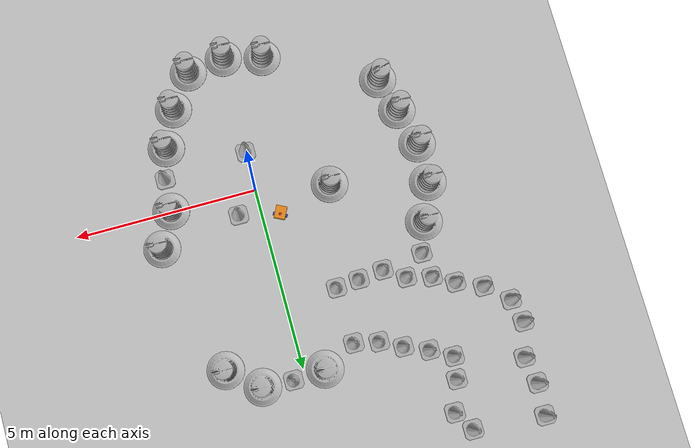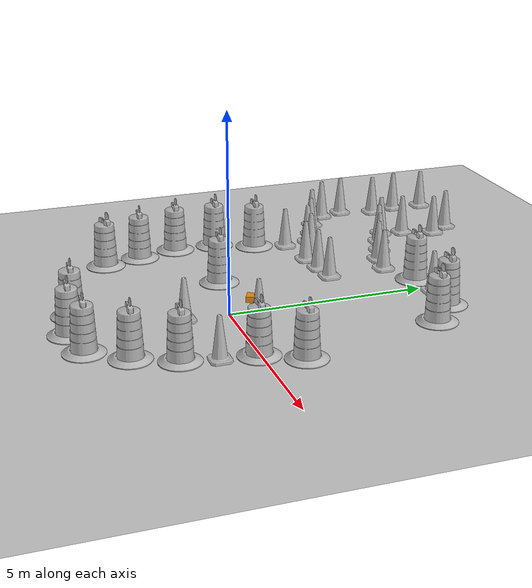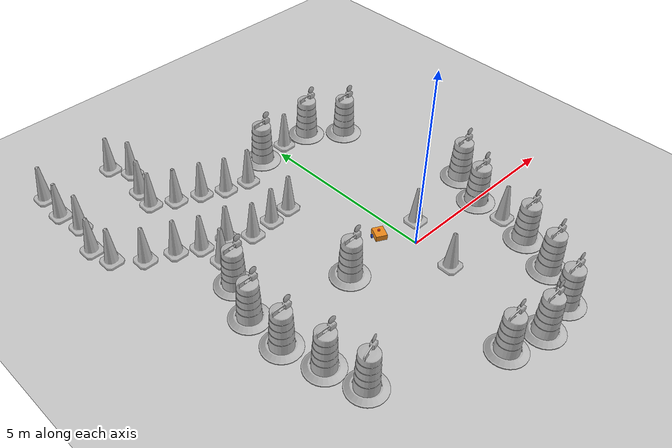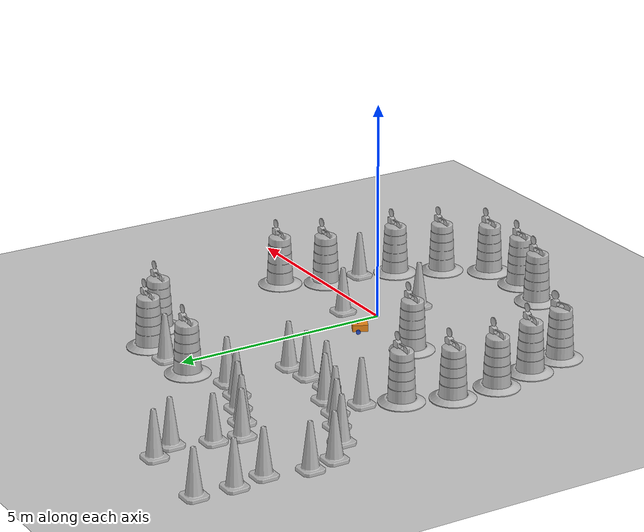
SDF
<sdf version="1.7">
 <world name="default">
  <light name="sun" type="directional">
   <pose>0 0 10 0 -0 0</pose>
   <diffuse>0.8 0.8 0.8 1</diffuse>
   <specular>0.2 0.2 0.2 1</specular>
   <attenuation>
    <range>1000</range>
    <constant>0.9</constant>
    <linear>0.01</linear>
    <quadratic>0.001</quadratic>
   </attenuation>
   <direction>-0.5 0.1 -0.9</direction>
   <spot><inner_angle>0</inner_angle><outer_angle>0</outer_angle><falloff>0</falloff></spot>
  </light>
  <model name="ground_plane">
   <static>1</static>
   <link name="link">
    <collision name="collision">
     <geometry><plane><normal>0 0 1</normal><size>100 100</size></plane></geometry>
     <surface><friction><ode><mu>100</mu><mu2>50</mu2></ode></friction></surface>
    </collision>
    <visual name="visual">
     <cast_shadows>0</cast_shadows>
     <geometry><plane><normal>0 0 1</normal><size>100 100</size></plane></geometry>
     <material>
      <script><uri>file://media/materials/scripts/gazebo.material</uri><name>Gazebo/Grey</name></script>
     </material>
    </visual>
   </link>
  </model>
  <gravity>0 0 -9.8</gravity>
  <magnetic_field>6e-06 2.3e-05 -4.2e-05</magnetic_field>
  <atmosphere type="adiabatic"/>
  <physics type="ode">
   <max_step_size>0.001</max_step_size>
   <real_time_factor>1</real_time_factor>
   <real_time_update_rate>1000</real_time_update_rate>
  </physics>
  <scene><ambient>0.4 0.4 0.4 1</ambient><background>0.7 0.7 0.7 1</background><shadows>1</shadows></scene>
  <audio><device>default</device></audio>
  <spherical_coordinates>
   <surface_model>EARTH_WGS84</surface_model>
   <latitude_deg>0</latitude_deg>
   <longitude_deg>0</longitude_deg>
   <elevation>0</elevation>
   <heading_deg>0</heading_deg>
  </spherical_coordinates>
  <model name="my_bot">
   <link name="base_link">
    <inertial>
     <pose>0.095455 0 -0.009091 0 -0 0</pose>
     <mass>1.1</mass>
     <inertia>
      <ixx>0.0114472</ixx>
      <ixy>0</ixy>
      <ixz>0.000295455</ixz>
      <iyy>0.0168287</iyy>
      <iyz>0</iyz>
      <izz>0.0134427</izz>
     </inertia>
    </inertial>
    <collision name="base_link_fixed_joint_lump__chassis_collision">
     <pose>0.05 0 0.075 0 -0 0</pose>
     <geometry><box><size>0.35 0.3 0.15</size></box></geometry>
    </collision>
    <collision name="base_link_fixed_joint_lump__caster_wheel_collision_1">
     <pose>0.16 0 0 1.5708 -0 0</pose>
     <geometry><sphere><radius>0.05</radius></sphere></geometry>
     <surface><friction><ode><mu>0.1</mu><mu2>0.1</mu2></ode></friction></surface>
    </collision>
    <collision name="base_link_fixed_joint_lump__laser_frame_collision_2">
     <pose>0 0 0.15 0 -0 0</pose>
     <geometry><cylinder><length>0.03</length><radius>0.035</radius></cylinder></geometry>
    </collision>
    <visual name="base_link_fixed_joint_lump__chassis_visual">
     <pose>0.05 0 0.075 0 -0 0</pose>
     <geometry><box><size>0.35 0.3 0.15</size></box></geometry>
     <material>
      <script><name>Gazebo/Orange</name><uri>file://media/materials/scripts/gazebo.material</uri></script>
     </material>
    </visual>
    <visual name="base_link_fixed_joint_lump__caster_wheel_visual_1">
     <pose>0.16 0 0 1.5708 -0 0</pose>
     <geometry><sphere><radius>0.05</radius></sphere></geometry>
     <material>
      <script><name>Gazebo/white</name><uri>file://media/materials/scripts/gazebo.material</uri></script>
     </material>
    </visual>
    <visual name="base_link_fixed_joint_lump__laser_frame_visual_2">
     <pose>0 0 0.15 0 -0 0</pose>
     <geometry><cylinder><length>0.03</length><radius>0.035</radius></cylinder></geometry>
     <material>
      <script><name>Gazebo/red</name><uri>file://media/materials/scripts/gazebo.material</uri></script>
     </material>
    </visual>
    <sensor name="laser" type="ray">
     <visualize>1</visualize>
     <update_rate>10</update_rate>
     <ray>
      <scan>
       <horizontal>
        <samples>360</samples>
        <min_angle>-3.14</min_angle>
        <max_angle>3.14</max_angle>
        <resolution>1</resolution>
       </horizontal>
       <vertical><samples>1</samples><min_angle>0</min_angle><max_angle>0</max_angle></vertical>
      </scan>
      <range><min>0.3</min><max>12</max></range>
     </ray>
     <plugin name="laser_controller" filename="libgazebo_ros_ray_sensor.so">
      <ros><argument>~/out:=scan</argument></ros>
      <output_type>sensor_msgs/LaserScan</output_type>
      <frame_name>laser_frame</frame_name>
     </plugin>
     <pose>0 0 0.15 0 -0 0</pose>
    </sensor>
   </link>
   <joint name="left_wheel_joint" type="revolute">
    <pose relative_to="base_link">0 0.175 0 -1.5708 0 0</pose>
    <parent>base_link</parent>
    <child>left_wheel</child>
    <axis>
     <xyz>0 0 1</xyz>
     <limit><lower>-1e+16</lower><upper>1e+16</upper></limit>
     <dynamics>
      <damping>1</damping>
      <friction>0.5</friction>
      <spring_reference>0</spring_reference>
      <spring_stiffness>0</spring_stiffness>
     </dynamics>
    </axis>
   </joint>
   <link name="left_wheel">
    <pose relative_to="left_wheel_joint">0 0 0 0 -0 0</pose>
    <inertial>
     <mass>0.5</mass>
     <inertia>
      <ixx>0.000379167</ixx>
      <ixy>0</ixy>
      <ixz>0</ixz>
      <iyy>0.000379167</iyy>
      <iyz>0</iyz>
      <izz>0.000625</izz>
     </inertia>
    </inertial>
    <collision name="left_wheel_collision">
     <geometry><cylinder><length>0.04</length><radius>0.05</radius></cylinder></geometry>
     <surface><friction><ode><mu>1.5</mu><mu2>1.5</mu2></ode></friction></surface>
    </collision>
    <visual name="left_wheel_visual">
     <geometry><cylinder><length>0.04</length><radius>0.05</radius></cylinder></geometry>
     <material>
      <script><name>Gazebo/Blue</name><uri>file://media/materials/scripts/gazebo.material</uri></script>
     </material>
    </visual>
   </link>
   <joint name="right_wheel_joint" type="revolute">
    <pose relative_to="base_link">0 -0.175 0 1.5708 -0 0</pose>
    <parent>base_link</parent>
    <child>right_wheel</child>
    <axis>
     <xyz>0 0 -1</xyz>
     <limit><lower>-1e+16</lower><upper>1e+16</upper></limit>
     <dynamics>
      <damping>1</damping>
      <friction>0.5</friction>
      <spring_reference>0</spring_reference>
      <spring_stiffness>0</spring_stiffness>
     </dynamics>
    </axis>
   </joint>
   <link name="right_wheel">
    <pose relative_to="right_wheel_joint">0 0 0 0 -0 0</pose>
    <inertial>
     <mass>0.5</mass>
     <inertia>
      <ixx>0.000379167</ixx>
      <ixy>0</ixy>
      <ixz>0</ixz>
      <iyy>0.000379167</iyy>
      <iyz>0</iyz>
      <izz>0.000625</izz>
     </inertia>
    </inertial>
    <collision name="right_wheel_collision">
     <geometry><cylinder><length>0.04</length><radius>0.05</radius></cylinder></geometry>
     <surface><friction><ode><mu>1.5</mu><mu2>1.5</mu2></ode></friction></surface>
    </collision>
    <visual name="right_wheel_visual">
     <geometry><cylinder><length>0.04</length><radius>0.05</radius></cylinder></geometry>
     <material>
      <script><name>Gazebo/Blue</name><uri>file://media/materials/scripts/gazebo.material</uri></script>
     </material>
    </visual>
   </link>
   <static>0</static>
   <plugin name="diff_drive" filename="libgazebo_ros_diff_drive.so">
    <left_joint>left_wheel_joint</left_joint>
    <right_joint>right_wheel_joint</right_joint>
    <wheel_separation>0.297</wheel_separation>
    <wheel_diameter>0.066</wheel_diameter>
    <max_wheel_torque>200</max_wheel_torque>
    <max_wheel_acceleration>10.0</max_wheel_acceleration>
    <odometry_frame>odom</odometry_frame>
    <robot_base_frame>base_link</robot_base_frame>
    <publish_odom>1</publish_odom>
    <publish_odom_tf>1</publish_odom_tf>
    <publish_wheel_tf>1</publish_wheel_tf>
   </plugin>
   <pose>-0.487358 0.828769 0.05 -0 1e-06 -2.03492</pose>
  </model>
  <model name="Construction Barrel">
   <link name="link">
    <inertial>
     <pose>0 0 0.4 0 -0 0</pose>
     <mass>500</mass>
     <inertia><ixx>51.2096</ixx><iyy>51.2096</iyy><izz>25</izz><ixy>0</ixy><ixz>0</ixz><iyz>0</iyz></inertia>
    </inertial>
    <collision name="collision">
     <geometry><mesh><uri>model://construction_barrel/meshes/construction_barrel.dae</uri></mesh></geometry>
    </collision>
    <visual name="visual">
     <geometry><mesh><uri>model://construction_barrel/meshes/construction_barrel.dae</uri></mesh></geometry>
    </visual>
   </link>
   <pose>-4.07025 -2.12361 -1e-06 0 4e-06 0.274691</pose>
  </model>
  <model name="Construction Barrel_0">
   <link name="link">
    <inertial>
     <pose>0 0 0.4 0 -0 0</pose>
     <mass>500</mass>
     <inertia><ixx>51.2096</ixx><iyy>51.2096</iyy><izz>25</izz><ixy>0</ixy><ixz>0</ixz><iyz>0</iyz></inertia>
    </inertial>
    <collision name="collision">
     <geometry><mesh><uri>model://construction_barrel/meshes/construction_barrel.dae</uri></mesh></geometry>
    </collision>
    <visual name="visual">
     <geometry><mesh><uri>model://construction_barrel/meshes/construction_barrel.dae</uri></mesh></geometry>
    </visual>
   </link>
   <pose>-4.34497 -1.14487 -2e-06 7e-06 -4e-06 -0.055319</pose>
  </model>
  <model name="Construction Barrel_1">
   <link name="link">
    <inertial>
     <pose>0 0 0.4 0 -0 0</pose>
     <mass>500</mass>
     <inertia><ixx>51.2096</ixx><iyy>51.2096</iyy><izz>25</izz><ixy>0</ixy><ixz>0</ixz><iyz>0</iyz></inertia>
    </inertial>
    <collision name="collision">
     <geometry><mesh><uri>model://construction_barrel/meshes/construction_barrel.dae</uri></mesh></geometry>
    </collision>
    <visual name="visual">
     <geometry><mesh><uri>model://construction_barrel/meshes/construction_barrel.dae</uri></mesh></geometry>
    </visual>
   </link>
   <pose>-4.62088 -0.092494 1e-06 3e-06 2e-06 -5.2e-05</pose>
  </model>
  <model name="Construction Barrel_2">
   <link name="link">
    <inertial>
     <pose>0 0 0.4 0 -0 0</pose>
     <mass>500</mass>
     <inertia><ixx>51.2096</ixx><iyy>51.2096</iyy><izz>25</izz><ixy>0</ixy><ixz>0</ixz><iyz>0</iyz></inertia>
    </inertial>
    <collision name="collision">
     <geometry><mesh><uri>model://construction_barrel/meshes/construction_barrel.dae</uri></mesh></geometry>
    </collision>
    <visual name="visual">
     <geometry><mesh><uri>model://construction_barrel/meshes/construction_barrel.dae</uri></mesh></geometry>
    </visual>
   </link>
   <pose>-4.60645 1.01089 1e-06 3e-06 2e-06 -5.1e-05</pose>
  </model>
  <model name="Construction Cone">
   <link name="link">
    <collision name="collision">
     <geometry>
      <mesh><scale>10 10 10</scale><uri>model://construction_cone/meshes/construction_cone.dae</uri></mesh>
     </geometry>
    </collision>
    <visual name="visual">
     <geometry>
      <mesh><scale>10 10 10</scale><uri>model://construction_cone/meshes/construction_cone.dae</uri></mesh>
     </geometry>
    </visual>
    <inertial>
     <inertia><ixx>1</ixx><ixy>0</ixy><ixz>0</ixz><iyy>1</iyy><iyz>0</iyz><izz>1</izz></inertia>
     <mass>1</mass>
    </inertial>
   </link>
   <pose>-2.77141 3.00239 -0 0 -1e-06 0</pose>
  </model>
  <model name="Construction Cone_0">
   <link name="link">
    <collision name="collision">
     <geometry>
      <mesh><scale>10 10 10</scale><uri>model://construction_cone/meshes/construction_cone.dae</uri></mesh>
     </geometry>
    </collision>
    <visual name="visual">
     <geometry>
      <mesh><scale>10 10 10</scale><uri>model://construction_cone/meshes/construction_cone.dae</uri></mesh>
     </geometry>
    </visual>
    <inertial>
     <inertia><ixx>1</ixx><ixy>0</ixy><ixz>0</ixz><iyy>1</iyy><iyz>0</iyz><izz>1</izz></inertia>
     <mass>1</mass>
    </inertial>
   </link>
   <pose>-2.07721 3.08173 -0 0 -0 0</pose>
  </model>
  <model name="Construction Cone_1">
   <link name="link">
    <collision name="collision">
     <geometry>
      <mesh><scale>10 10 10</scale><uri>model://construction_cone/meshes/construction_cone.dae</uri></mesh>
     </geometry>
    </collision>
    <visual name="visual">
     <geometry>
      <mesh><scale>10 10 10</scale><uri>model://construction_cone/meshes/construction_cone.dae</uri></mesh>
     </geometry>
    </visual>
    <inertial>
     <inertia><ixx>1</ixx><ixy>0</ixy><ixz>0</ixz><iyy>1</iyy><iyz>0</iyz><izz>1</izz></inertia>
     <mass>1</mass>
    </inertial>
   </link>
   <pose>-1.43292 3.1461 0 -0 -0 -0</pose>
  </model>
  <model name="Construction Barrel_3">
   <link name="link">
    <inertial>
     <pose>0 0 0.4 0 -0 0</pose>
     <mass>500</mass>
     <inertia><ixx>51.2096</ixx><iyy>51.2096</iyy><izz>25</izz><ixy>0</ixy><ixz>0</ixz><iyz>0</iyz></inertia>
    </inertial>
    <collision name="collision">
     <geometry><mesh><uri>model://construction_barrel/meshes/construction_barrel.dae</uri></mesh></geometry>
    </collision>
    <visual name="visual">
     <geometry><mesh><uri>model://construction_barrel/meshes/construction_barrel.dae</uri></mesh></geometry>
    </visual>
   </link>
   <pose>-2.00508 0.361544 1e-06 3e-06 2e-06 -4.6e-05</pose>
  </model>
  <model name="Construction Barrel_4">
   <link name="link">
    <inertial>
     <pose>0 0 0.4 0 -0 0</pose>
     <mass>500</mass>
     <inertia><ixx>51.2096</ixx><iyy>51.2096</iyy><izz>25</izz><ixy>0</ixy><ixz>0</ixz><iyz>0</iyz></inertia>
    </inertial>
    <collision name="collision">
     <geometry><mesh><uri>model://construction_barrel/meshes/construction_barrel.dae</uri></mesh></geometry>
    </collision>
    <visual name="visual">
     <geometry><mesh><uri>model://construction_barrel/meshes/construction_barrel.dae</uri></mesh></geometry>
    </visual>
   </link>
   <pose>2.3488 -0.040343 1e-06 3e-06 2e-06 -4.5e-05</pose>
  </model>
  <model name="Construction Barrel_5">
   <link name="link">
    <inertial>
     <pose>0 0 0.4 0 -0 0</pose>
     <mass>500</mass>
     <inertia><ixx>51.2096</ixx><iyy>51.2096</iyy><izz>25</izz><ixy>0</ixy><ixz>0</ixz><iyz>0</iyz></inertia>
    </inertial>
    <collision name="collision">
     <geometry><mesh><uri>model://construction_barrel/meshes/construction_barrel.dae</uri></mesh></geometry>
    </collision>
    <visual name="visual">
     <geometry><mesh><uri>model://construction_barrel/meshes/construction_barrel.dae</uri></mesh></geometry>
    </visual>
   </link>
   <pose>2.83649 0.901322 1e-06 3e-06 2e-06 -4.4e-05</pose>
  </model>
  <model name="Construction Barrel_6">
   <link name="link">
    <inertial>
     <pose>0 0 0.4 0 -0 0</pose>
     <mass>500</mass>
     <inertia><ixx>51.2096</ixx><iyy>51.2096</iyy><izz>25</izz><ixy>0</ixy><ixz>0</ixz><iyz>0</iyz></inertia>
    </inertial>
    <collision name="collision">
     <geometry><mesh><uri>model://construction_barrel/meshes/construction_barrel.dae</uri></mesh></geometry>
    </collision>
    <visual name="visual">
     <geometry><mesh><uri>model://construction_barrel/meshes/construction_barrel.dae</uri></mesh></geometry>
    </visual>
   </link>
   <pose>1.16103 5.18207 1e-06 3e-06 2e-06 -4.3e-05</pose>
  </model>
  <model name="Construction Barrel_7">
   <link name="link">
    <inertial>
     <pose>0 0 0.4 0 -0 0</pose>
     <mass>500</mass>
     <inertia><ixx>51.2096</ixx><iyy>51.2096</iyy><izz>25</izz><ixy>0</ixy><ixz>0</ixz><iyz>0</iyz></inertia>
    </inertial>
    <collision name="collision">
     <geometry><mesh><uri>model://construction_barrel/meshes/construction_barrel.dae</uri></mesh></geometry>
    </collision>
    <visual name="visual">
     <geometry><mesh><uri>model://construction_barrel/meshes/construction_barrel.dae</uri></mesh></geometry>
    </visual>
   </link>
   <pose>1.99842 4.49943 1e-06 3e-06 2e-06 -4.2e-05</pose>
  </model>
  <model name="Construction Barrel_8">
   <link name="link">
    <inertial>
     <pose>0 0 0.4 0 -0 0</pose>
     <mass>500</mass>
     <inertia><ixx>51.2096</ixx><iyy>51.2096</iyy><izz>25</izz><ixy>0</ixy><ixz>0</ixz><iyz>0</iyz></inertia>
    </inertial>
    <collision name="collision">
     <geometry><mesh><uri>model://construction_barrel/meshes/construction_barrel.dae</uri></mesh></geometry>
    </collision>
    <visual name="visual">
     <geometry><mesh><uri>model://construction_barrel/meshes/construction_barrel.dae</uri></mesh></geometry>
    </visual>
   </link>
   <pose>-1.14311 -3.56627 1e-06 3e-06 2e-06 -4e-05</pose>
  </model>
  <model name="Construction Barrel_9">
   <link name="link">
    <inertial>
     <pose>0 0 0.4 0 -0 0</pose>
     <mass>500</mass>
     <inertia><ixx>51.2096</ixx><iyy>51.2096</iyy><izz>25</izz><ixy>0</ixy><ixz>0</ixz><iyz>0</iyz></inertia>
    </inertial>
    <collision name="collision">
     <geometry><mesh><uri>model://construction_barrel/meshes/construction_barrel.dae</uri></mesh></geometry>
    </collision>
    <visual name="visual">
     <geometry><mesh><uri>model://construction_barrel/meshes/construction_barrel.dae</uri></mesh></geometry>
    </visual>
   </link>
   <pose>-0.0962 -3.82598 1e-06 3e-06 2e-06 -3.9e-05</pose>
  </model>
  <model name="Construction Barrel_10">
   <link name="link">
    <inertial>
     <pose>0 0 0.4 0 -0 0</pose>
     <mass>500</mass>
     <inertia><ixx>51.2096</ixx><iyy>51.2096</iyy><izz>25</izz><ixy>0</ixy><ixz>0</ixz><iyz>0</iyz></inertia>
    </inertial>
    <collision name="collision">
     <geometry><mesh><uri>model://construction_barrel/meshes/construction_barrel.dae</uri></mesh></geometry>
    </collision>
    <visual name="visual">
     <geometry><mesh><uri>model://construction_barrel/meshes/construction_barrel.dae</uri></mesh></geometry>
    </visual>
   </link>
   <pose>0.945716 -3.67381 1e-06 3e-06 2e-06 -3.8e-05</pose>
  </model>
  <model name="Construction Barrel_11">
   <link name="link">
    <inertial>
     <pose>0 0 0.4 0 -0 0</pose>
     <mass>500</mass>
     <inertia><ixx>51.2096</ixx><iyy>51.2096</iyy><izz>25</izz><ixy>0</ixy><ixz>0</ixz><iyz>0</iyz></inertia>
    </inertial>
    <collision name="collision">
     <geometry><mesh><uri>model://construction_barrel/meshes/construction_barrel.dae</uri></mesh></geometry>
    </collision>
    <visual name="visual">
     <geometry><mesh><uri>model://construction_barrel/meshes/construction_barrel.dae</uri></mesh></geometry>
    </visual>
   </link>
   <pose>1.59696 -2.76983 1e-06 3e-06 2e-06 -3.7e-05</pose>
  </model>
  <model name="Construction Barrel_12">
   <link name="link">
    <inertial>
     <pose>0 0 0.4 0 -0 0</pose>
     <mass>500</mass>
     <inertia><ixx>51.2096</ixx><iyy>51.2096</iyy><izz>25</izz><ixy>0</ixy><ixz>0</ixz><iyz>0</iyz></inertia>
    </inertial>
    <collision name="collision">
     <geometry><mesh><uri>model://construction_barrel/meshes/construction_barrel.dae</uri></mesh></geometry>
    </collision>
    <visual name="visual">
     <geometry><mesh><uri>model://construction_barrel/meshes/construction_barrel.dae</uri></mesh></geometry>
    </visual>
   </link>
   <pose>2.05345 -1.76139 1e-06 3e-06 2e-06 -3.5e-05</pose>
  </model>
  <model name="Construction Cone_2">
   <link name="link">
    <collision name="collision">
     <geometry>
      <mesh><scale>10 10 10</scale><uri>model://construction_cone/meshes/construction_cone.dae</uri></mesh>
     </geometry>
    </collision>
    <visual name="visual">
     <geometry>
      <mesh><scale>10 10 10</scale><uri>model://construction_cone/meshes/construction_cone.dae</uri></mesh>
     </geometry>
    </visual>
    <inertial>
     <inertia><ixx>1</ixx><ixy>0</ixy><ixz>0</ixz><iyy>1</iyy><iyz>0</iyz><izz>1</izz></inertia>
     <mass>1</mass>
    </inertial>
   </link>
   <pose>2.29105 -0.928032 0 -0 -0 -0</pose>
  </model>
  <model name="Construction Cone_3">
   <link name="link">
    <collision name="collision">
     <geometry>
      <mesh><scale>10 10 10</scale><uri>model://construction_cone/meshes/construction_cone.dae</uri></mesh>
     </geometry>
    </collision>
    <visual name="visual">
     <geometry>
      <mesh><scale>10 10 10</scale><uri>model://construction_cone/meshes/construction_cone.dae</uri></mesh>
     </geometry>
    </visual>
    <inertial>
     <inertia><ixx>1</ixx><ixy>0</ixy><ixz>0</ixz><iyy>1</iyy><iyz>0</iyz><izz>1</izz></inertia>
     <mass>1</mass>
    </inertial>
   </link>
   <pose>-3.32073 3.36492 -0 0 -0 0</pose>
  </model>
  <model name="Construction Cone_4">
   <link name="link">
    <collision name="collision">
     <geometry>
      <mesh><scale>10 10 10</scale><uri>model://construction_cone/meshes/construction_cone.dae</uri></mesh>
     </geometry>
    </collision>
    <visual name="visual">
     <geometry>
      <mesh><scale>10 10 10</scale><uri>model://construction_cone/meshes/construction_cone.dae</uri></mesh>
     </geometry>
    </visual>
    <inertial>
     <inertia><ixx>1</ixx><ixy>0</ixy><ixz>0</ixz><iyy>1</iyy><iyz>0</iyz><izz>1</izz></inertia>
     <mass>1</mass>
    </inertial>
   </link>
   <pose>-3.99702 3.52682 0 -0 -0 -0</pose>
  </model>
  <model name="Construction Cone_5">
   <link name="link">
    <collision name="collision">
     <geometry>
      <mesh><scale>10 10 10</scale><uri>model://construction_cone/meshes/construction_cone.dae</uri></mesh>
     </geometry>
    </collision>
    <visual name="visual">
     <geometry>
      <mesh><scale>10 10 10</scale><uri>model://construction_cone/meshes/construction_cone.dae</uri></mesh>
     </geometry>
    </visual>
    <inertial>
     <inertia><ixx>1</ixx><ixy>0</ixy><ixz>0</ixz><iyy>1</iyy><iyz>0</iyz><izz>1</izz></inertia>
     <mass>1</mass>
    </inertial>
   </link>
   <pose>-4.56079 3.83305 -0 0 -1e-06 0</pose>
  </model>
  <model name="Construction Cone_6">
   <link name="link">
    <collision name="collision">
     <geometry>
      <mesh><scale>10 10 10</scale><uri>model://construction_cone/meshes/construction_cone.dae</uri></mesh>
     </geometry>
    </collision>
    <visual name="visual">
     <geometry>
      <mesh><scale>10 10 10</scale><uri>model://construction_cone/meshes/construction_cone.dae</uri></mesh>
     </geometry>
    </visual>
    <inertial>
     <inertia><ixx>1</ixx><ixy>0</ixy><ixz>0</ixz><iyy>1</iyy><iyz>0</iyz><izz>1</izz></inertia>
     <mass>1</mass>
    </inertial>
   </link>
   <pose>-5.25679 4.13426 -0 0 -1e-06 0</pose>
  </model>
  <model name="Construction Cone_7">
   <link name="link">
    <collision name="collision">
     <geometry>
      <mesh><scale>10 10 10</scale><uri>model://construction_cone/meshes/construction_cone.dae</uri></mesh>
     </geometry>
    </collision>
    <visual name="visual">
     <geometry>
      <mesh><scale>10 10 10</scale><uri>model://construction_cone/meshes/construction_cone.dae</uri></mesh>
     </geometry>
    </visual>
    <inertial>
     <inertia><ixx>1</ixx><ixy>0</ixy><ixz>0</ixz><iyy>1</iyy><iyz>0</iyz><izz>1</izz></inertia>
     <mass>1</mass>
    </inertial>
   </link>
   <pose>-5.86702 4.67082 0 -0 -0 -0</pose>
  </model>
  <model name="Construction Cone_8">
   <link name="link">
    <collision name="collision">
     <geometry>
      <mesh><scale>10 10 10</scale><uri>model://construction_cone/meshes/construction_cone.dae</uri></mesh>
     </geometry>
    </collision>
    <visual name="visual">
     <geometry>
      <mesh><scale>10 10 10</scale><uri>model://construction_cone/meshes/construction_cone.dae</uri></mesh>
     </geometry>
    </visual>
    <inertial>
     <inertia><ixx>1</ixx><ixy>0</ixy><ixz>0</ixz><iyy>1</iyy><iyz>0</iyz><izz>1</izz></inertia>
     <mass>1</mass>
    </inertial>
   </link>
   <pose>-6.01646 5.31771 -0 0 -0 0</pose>
  </model>
  <model name="Construction Cone_9">
   <link name="link">
    <collision name="collision">
     <geometry>
      <mesh><scale>10 10 10</scale><uri>model://construction_cone/meshes/construction_cone.dae</uri></mesh>
     </geometry>
    </collision>
    <visual name="visual">
     <geometry>
      <mesh><scale>10 10 10</scale><uri>model://construction_cone/meshes/construction_cone.dae</uri></mesh>
     </geometry>
    </visual>
    <inertial>
     <inertia><ixx>1</ixx><ixy>0</ixy><ixz>0</ixz><iyy>1</iyy><iyz>0</iyz><izz>1</izz></inertia>
     <mass>1</mass>
    </inertial>
   </link>
   <pose>-5.77072 6.23533 -0 0 -0 0</pose>
  </model>
  <model name="Construction Cone_10">
   <link name="link">
    <collision name="collision">
     <geometry>
      <mesh><scale>10 10 10</scale><uri>model://construction_cone/meshes/construction_cone.dae</uri></mesh>
     </geometry>
    </collision>
    <visual name="visual">
     <geometry>
      <mesh><scale>10 10 10</scale><uri>model://construction_cone/meshes/construction_cone.dae</uri></mesh>
     </geometry>
    </visual>
    <inertial>
     <inertia><ixx>1</ixx><ixy>0</ixy><ixz>0</ixz><iyy>1</iyy><iyz>0</iyz><izz>1</izz></inertia>
     <mass>1</mass>
    </inertial>
   </link>
   <pose>-1.48193 4.68878 -0 1e-06 1e-06 0</pose>
  </model>
  <model name="Construction Cone_11">
   <link name="link">
    <collision name="collision">
     <geometry>
      <mesh><scale>10 10 10</scale><uri>model://construction_cone/meshes/construction_cone.dae</uri></mesh>
     </geometry>
    </collision>
    <visual name="visual">
     <geometry>
      <mesh><scale>10 10 10</scale><uri>model://construction_cone/meshes/construction_cone.dae</uri></mesh>
     </geometry>
    </visual>
    <inertial>
     <inertia><ixx>1</ixx><ixy>0</ixy><ixz>0</ixz><iyy>1</iyy><iyz>0</iyz><izz>1</izz></inertia>
     <mass>1</mass>
    </inertial>
   </link>
   <pose>-2.14697 4.83069 -8e-06 0 1e-06 0</pose>
  </model>
  <model name="Construction Cone_12">
   <link name="link">
    <collision name="collision">
     <geometry>
      <mesh><scale>10 10 10</scale><uri>model://construction_cone/meshes/construction_cone.dae</uri></mesh>
     </geometry>
    </collision>
    <visual name="visual">
     <geometry>
      <mesh><scale>10 10 10</scale><uri>model://construction_cone/meshes/construction_cone.dae</uri></mesh>
     </geometry>
    </visual>
    <inertial>
     <inertia><ixx>1</ixx><ixy>0</ixy><ixz>0</ixz><iyy>1</iyy><iyz>0</iyz><izz>1</izz></inertia>
     <mass>1</mass>
    </inertial>
   </link>
   <pose>-2.7373 5.12894 -0 0 -0 0</pose>
  </model>
  <model name="Construction Cone_13">
   <link name="link">
    <collision name="collision">
     <geometry>
      <mesh><scale>10 10 10</scale><uri>model://construction_cone/meshes/construction_cone.dae</uri></mesh>
     </geometry>
    </collision>
    <visual name="visual">
     <geometry>
      <mesh><scale>10 10 10</scale><uri>model://construction_cone/meshes/construction_cone.dae</uri></mesh>
     </geometry>
    </visual>
    <inertial>
     <inertia><ixx>1</ixx><ixy>0</ixy><ixz>0</ixz><iyy>1</iyy><iyz>0</iyz><izz>1</izz></inertia>
     <mass>1</mass>
    </inertial>
   </link>
   <pose>-3.38136 5.39345 -0 -0 -0 -0</pose>
  </model>
  <model name="Construction Cone_14">
   <link name="link">
    <collision name="collision">
     <geometry>
      <mesh><scale>10 10 10</scale><uri>model://construction_cone/meshes/construction_cone.dae</uri></mesh>
     </geometry>
    </collision>
    <visual name="visual">
     <geometry>
      <mesh><scale>10 10 10</scale><uri>model://construction_cone/meshes/construction_cone.dae</uri></mesh>
     </geometry>
    </visual>
    <inertial>
     <inertia><ixx>1</ixx><ixy>0</ixy><ixz>0</ixz><iyy>1</iyy><iyz>0</iyz><izz>1</izz></inertia>
     <mass>1</mass>
    </inertial>
   </link>
   <pose>-3.96226 5.71791 -1e-06 2e-06 2e-06 0</pose>
  </model>
  <model name="Construction Cone_15">
   <link name="link">
    <collision name="collision">
     <geometry>
      <mesh><scale>10 10 10</scale><uri>model://construction_cone/meshes/construction_cone.dae</uri></mesh>
     </geometry>
    </collision>
    <visual name="visual">
     <geometry>
      <mesh><scale>10 10 10</scale><uri>model://construction_cone/meshes/construction_cone.dae</uri></mesh>
     </geometry>
    </visual>
    <inertial>
     <inertia><ixx>1</ixx><ixy>0</ixy><ixz>0</ixz><iyy>1</iyy><iyz>0</iyz><izz>1</izz></inertia>
     <mass>1</mass>
    </inertial>
   </link>
   <pose>-3.86613 6.32282 -1e-05 -1e-06 0 0</pose>
  </model>
  <model name="Construction Cone_16">
   <link name="link">
    <collision name="collision">
     <geometry>
      <mesh><scale>10 10 10</scale><uri>model://construction_cone/meshes/construction_cone.dae</uri></mesh>
     </geometry>
    </collision>
    <visual name="visual">
     <geometry>
      <mesh><scale>10 10 10</scale><uri>model://construction_cone/meshes/construction_cone.dae</uri></mesh>
     </geometry>
    </visual>
    <inertial>
     <inertia><ixx>1</ixx><ixy>0</ixy><ixz>0</ixz><iyy>1</iyy><iyz>0</iyz><izz>1</izz></inertia>
     <mass>1</mass>
    </inertial>
   </link>
   <pose>-5.90527 6.97216 -0 0 -0 0</pose>
  </model>
  <model name="Construction Cone_17">
   <link name="link">
    <collision name="collision">
     <geometry>
      <mesh><scale>10 10 10</scale><uri>model://construction_cone/meshes/construction_cone.dae</uri></mesh>
     </geometry>
    </collision>
    <visual name="visual">
     <geometry>
      <mesh><scale>10 10 10</scale><uri>model://construction_cone/meshes/construction_cone.dae</uri></mesh>
     </geometry>
    </visual>
    <inertial>
     <inertia><ixx>1</ixx><ixy>0</ixy><ixz>0</ixz><iyy>1</iyy><iyz>0</iyz><izz>1</izz></inertia>
     <mass>1</mass>
    </inertial>
   </link>
   <pose>-5.85126 7.83653 -0 0 -1e-06 0</pose>
  </model>
  <model name="Construction Cone_18">
   <link name="link">
    <collision name="collision">
     <geometry>
      <mesh><scale>10 10 10</scale><uri>model://construction_cone/meshes/construction_cone.dae</uri></mesh>
     </geometry>
    </collision>
    <visual name="visual">
     <geometry>
      <mesh><scale>10 10 10</scale><uri>model://construction_cone/meshes/construction_cone.dae</uri></mesh>
     </geometry>
    </visual>
    <inertial>
     <inertia><ixx>1</ixx><ixy>0</ixy><ixz>0</ixz><iyy>1</iyy><iyz>0</iyz><izz>1</izz></inertia>
     <mass>1</mass>
    </inertial>
   </link>
   <pose>-3.57133 7.14556 -0 -0 -0 -0</pose>
  </model>
  <model name="Construction Cone_19">
   <link name="link">
    <collision name="collision">
     <geometry>
      <mesh><scale>10 10 10</scale><uri>model://construction_cone/meshes/construction_cone.dae</uri></mesh>
     </geometry>
    </collision>
    <visual name="visual">
     <geometry>
      <mesh><scale>10 10 10</scale><uri>model://construction_cone/meshes/construction_cone.dae</uri></mesh>
     </geometry>
    </visual>
    <inertial>
     <inertia><ixx>1</ixx><ixy>0</ixy><ixz>0</ixz><iyy>1</iyy><iyz>0</iyz><izz>1</izz></inertia>
     <mass>1</mass>
    </inertial>
   </link>
   <pose>-3.91433 7.69265 -0 0 -0 0</pose>
  </model>
  <model name="Construction Cone_20">
   <link name="link">
    <collision name="collision">
     <geometry>
      <mesh><scale>10 10 10</scale><uri>model://construction_cone/meshes/construction_cone.dae</uri></mesh>
     </geometry>
    </collision>
    <visual name="visual">
     <geometry>
      <mesh><scale>10 10 10</scale><uri>model://construction_cone/meshes/construction_cone.dae</uri></mesh>
     </geometry>
    </visual>
    <inertial>
     <inertia><ixx>1</ixx><ixy>0</ixy><ixz>0</ixz><iyy>1</iyy><iyz>0</iyz><izz>1</izz></inertia>
     <mass>1</mass>
    </inertial>
   </link>
   <pose>-0.017332 -1.09452 -0 0 -1e-06 0</pose>
  </model>
  <model name="Construction Cone_21">
   <link name="link">
    <collision name="collision">
     <geometry>
      <mesh><scale>10 10 10</scale><uri>model://construction_cone/meshes/construction_cone.dae</uri></mesh>
     </geometry>
    </collision>
    <visual name="visual">
     <geometry>
      <mesh><scale>10 10 10</scale><uri>model://construction_cone/meshes/construction_cone.dae</uri></mesh>
     </geometry>
    </visual>
    <inertial>
     <inertia><ixx>1</ixx><ixy>0</ixy><ixz>0</ixz><iyy>1</iyy><iyz>0</iyz><izz>1</izz></inertia>
     <mass>1</mass>
    </inertial>
   </link>
   <pose>0.605006 0.545035 0 -0 -0 -0</pose>
  </model>
  <model name="Construction Barrel_13">
   <link name="link">
    <inertial>
     <pose>0 0 0.4 0 -0 0</pose>
     <mass>500</mass>
     <inertia><ixx>51.2096</ixx><iyy>51.2096</iyy><izz>25</izz><ixy>0</ixy><ixz>0</ixz><iyz>0</iyz></inertia>
    </inertial>
    <collision name="collision">
     <geometry><mesh><uri>model://construction_barrel/meshes/construction_barrel.dae</uri></mesh></geometry>
    </collision>
    <visual name="visual">
     <geometry><mesh><uri>model://construction_barrel/meshes/construction_barrel.dae</uri></mesh></geometry>
    </visual>
   </link>
   <pose>-4.20013 2.03031 -1e-06 3e-06 1e-05 -7e-06</pose>
  </model>
  <model name="Construction Cone_22">
   <link name="link">
    <collision name="collision">
     <geometry>
      <mesh><scale>10 10 10</scale><uri>model://construction_cone/meshes/construction_cone.dae</uri></mesh>
     </geometry>
    </collision>
    <visual name="visual">
     <geometry>
      <mesh><scale>10 10 10</scale><uri>model://construction_cone/meshes/construction_cone.dae</uri></mesh>
     </geometry>
    </visual>
    <inertial>
     <inertia><ixx>1</ixx><ixy>0</ixy><ixz>0</ixz><iyy>1</iyy><iyz>0</iyz><izz>1</izz></inertia>
     <mass>1</mass>
    </inertial>
   </link>
   <pose>-3.90733 2.83271 -6e-06 2e-06 -0 0</pose>
  </model>
  <model name="Construction Barrel_14">
   <link name="link">
    <inertial>
     <pose>0 0 0.4 0 -0 0</pose>
     <mass>500</mass>
     <inertia><ixx>51.2096</ixx><iyy>51.2096</iyy><izz>25</izz><ixy>0</ixy><ixz>0</ixz><iyz>0</iyz></inertia>
    </inertial>
    <collision name="collision">
     <geometry><mesh><uri>model://construction_barrel/meshes/construction_barrel.dae</uri></mesh></geometry>
    </collision>
    <visual name="visual">
     <geometry><mesh><uri>model://construction_barrel/meshes/construction_barrel.dae</uri></mesh></geometry>
    </visual>
   </link>
   <pose>-0.563164 5.15341 0 0 0 -3e-06</pose>
  </model>
  <model name="Construction Cone_23">
   <link name="link">
    <collision name="collision">
     <geometry>
      <mesh><scale>10 10 10</scale><uri>model://construction_cone/meshes/construction_cone.dae</uri></mesh>
     </geometry>
    </collision>
    <visual name="visual">
     <geometry>
      <mesh><scale>10 10 10</scale><uri>model://construction_cone/meshes/construction_cone.dae</uri></mesh>
     </geometry>
    </visual>
    <inertial>
     <inertia><ixx>1</ixx><ixy>0</ixy><ixz>0</ixz><iyy>1</iyy><iyz>0</iyz><izz>1</izz></inertia>
     <mass>1</mass>
    </inertial>
   </link>
   <pose>0.321524 5.21872 -0 0 -1e-06 0</pose>
  </model>
 </world>
</sdf>
